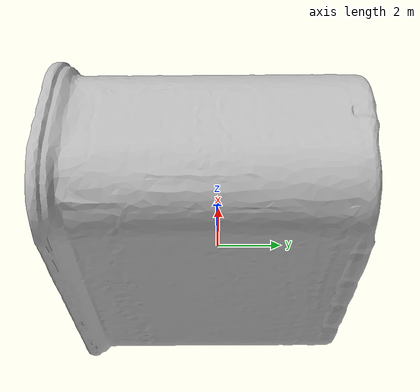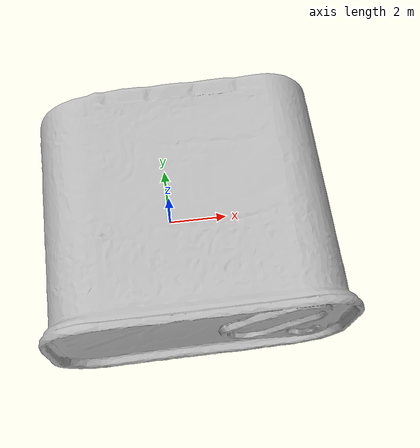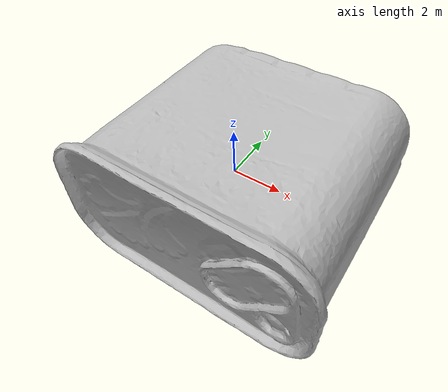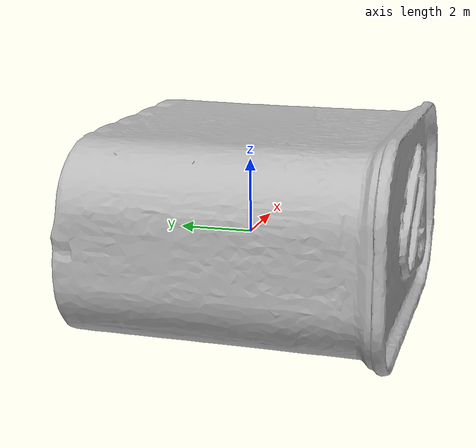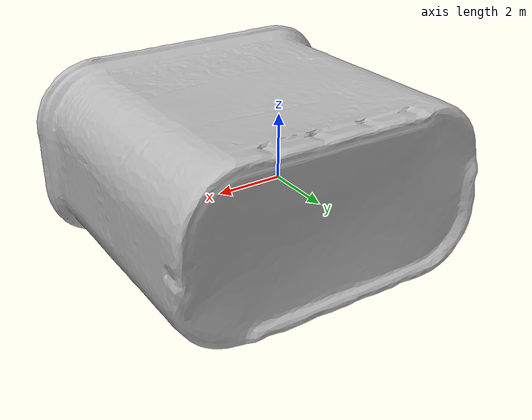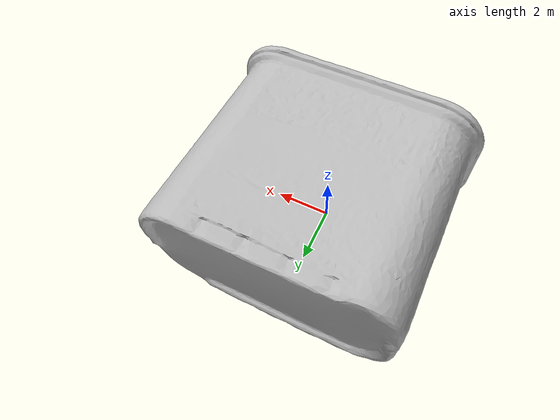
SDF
<?xml version="1.0" ?>
<sdf version="1.7">
	<model name="potted_meat_can">
		<link name="base">
			<visual name="potted_meat_can_visual">
				<pose>0.6 -0.25 0.33 0 0 0</pose>
				<geometry>
					<mesh>
						<scale>1 1 1</scale>
						<uri>meshes/textured.obj</uri>
					</mesh>
				</geometry>
			</visual>
		</link>
	</model>
</sdf>
